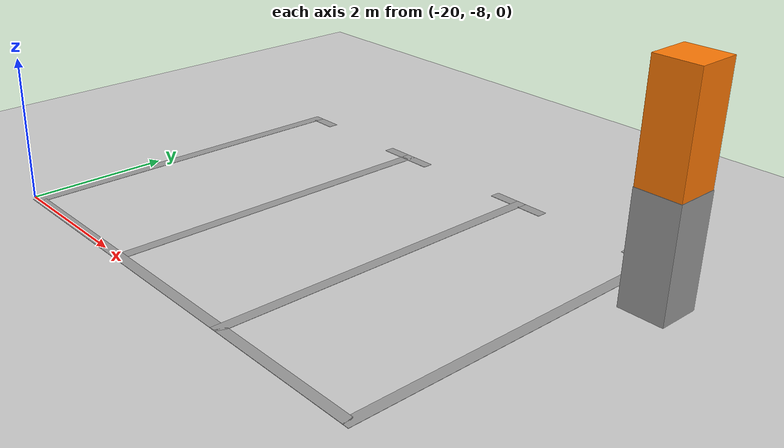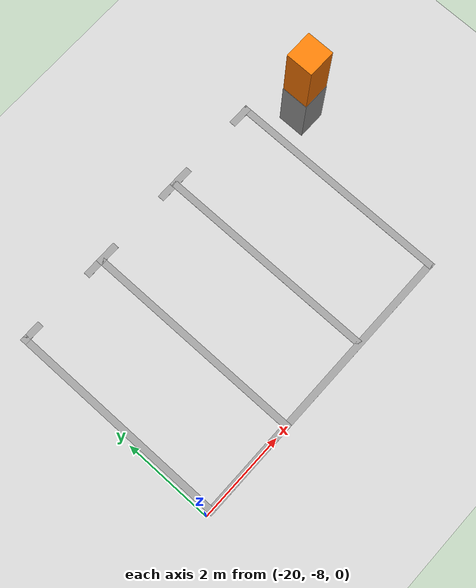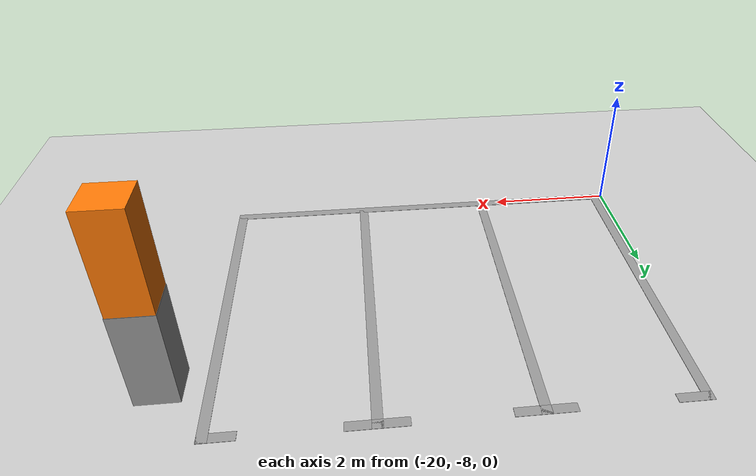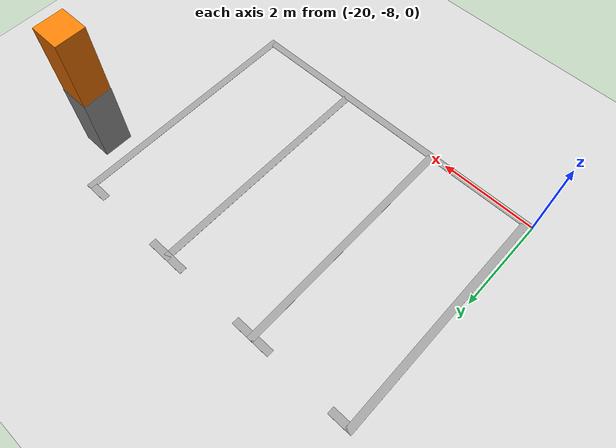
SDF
<sdf version="1.7">
 <world name="default">
  <model name="ground_plane">
   <static>1</static>
   <link name="link">
    <collision name="collision">
     <geometry><plane><normal>0 0 1</normal><size>100 100</size></plane></geometry>
     <surface><friction><ode><mu>100</mu><mu2>50</mu2></ode></friction></surface>
    </collision>
    <visual name="visual">
     <cast_shadows>0</cast_shadows>
     <geometry><plane><normal>0 0 1</normal><size>100 100</size></plane></geometry>
     <material>
      <script><uri>file://media/materials/scripts/gazebo.material</uri><name>Gazebo/Grey</name></script>
     </material>
    </visual>
   </link>
  </model>
  <model name="carport1_4_clone_0">
   <pose>-16.1561 -7.24507 0 0 -0 3.14141</pose>
   <link name="Wall_105">
    <collision name="Wall_105_Collision">
     <geometry><box><size>0.61 0.6 1.5</size></box></geometry>
     <pose>0 0 0.75 0 -0 0</pose>
    </collision>
    <visual name="Wall_105_Visual">
     <pose>0 0 0.75 0 -0 0</pose>
     <geometry><box><size>0.61 0.6 1.5</size></box></geometry>
     <material>
      <script><uri>file://media/materials/scripts/gazebo.material</uri><name>Gazebo/Grey</name></script>
      <ambient>1 1 1 1</ambient>
     </material>
     <meta><layer>0</layer></meta>
    </visual>
    <pose>-3.47407 -3.2865 0 0 -0 0</pose>
   </link>
   <link name="Wall_116">
    <collision name="Wall_116_Collision">
     <geometry><box><size>5.1 0.15 0.005</size></box></geometry>
     <pose>0 0 0.0025 0 -0 0</pose>
    </collision>
    <visual name="Wall_116_Visual">
     <pose>0 0 0.0025 0 -0 0</pose>
     <geometry><box><size>5.1 0.15 0.005</size></box></geometry>
     <material>
      <script><uri>file://media/materials/scripts/gazebo.material</uri><name>Gazebo/Grey</name></script>
      <ambient>1 1 1 1</ambient>
     </material>
     <meta><layer>0</layer></meta>
    </visual>
    <pose>-2.82307 -1.7385 0 0 -0 1.5708</pose>
   </link>
   <link name="Wall_124">
    <collision name="Wall_124_Collision">
     <geometry><box><size>5.1 0.15 0.005</size></box></geometry>
     <pose>0 0 0.0025 0 -0 0</pose>
    </collision>
    <visual name="Wall_124_Visual">
     <pose>0 0 0.0025 0 -0 0</pose>
     <geometry><box><size>5.1 0.15 0.005</size></box></geometry>
     <material>
      <script><uri>file://media/materials/scripts/gazebo.material</uri><name>Gazebo/Grey</name></script>
      <ambient>1 1 1 1</ambient>
     </material>
     <meta><layer>0</layer></meta>
    </visual>
    <pose>3.70393 -1.7305 0 0 -0 1.5708</pose>
   </link>
   <link name="Wall_146">
    <collision name="Wall_146_Collision">
     <geometry><box><size>6.67711 0.15 0.005</size></box></geometry>
     <pose>0 0 0.0025 0 -0 0</pose>
    </collision>
    <visual name="Wall_146_Visual">
     <pose>0 0 0.0025 0 -0 0</pose>
     <geometry><box><size>6.67711 0.15 0.005</size></box></geometry>
     <material>
      <script><uri>file://media/materials/scripts/gazebo.material</uri><name>Gazebo/Grey</name></script>
      <ambient>1 1 1 1</ambient>
     </material>
     <meta><layer>0</layer></meta>
    </visual>
    <pose>0.440428 0.7405 0 0 -0 0.001226</pose>
   </link>
   <link name="Wall_168">
    <collision name="Wall_168_Collision">
     <geometry><box><size>5.1 0.15 0.005</size></box></geometry>
     <pose>0 0 0.0025 0 -0 0</pose>
    </collision>
    <visual name="Wall_168_Visual">
     <pose>0 0 0.0025 0 -0 0</pose>
     <geometry><box><size>5.1 0.15 0.005</size></box></geometry>
     <material>
      <script><uri>file://media/materials/scripts/gazebo.material</uri><name>Gazebo/Grey</name></script>
      <ambient>1 1 1 1</ambient>
     </material>
     <meta><layer>0</layer></meta>
    </visual>
    <pose>-0.64827 -1.73839 0 0 -0 1.57088</pose>
   </link>
   <link name="Wall_173">
    <collision name="Wall_173_Collision">
     <geometry><box><size>5.1 0.15 0.005</size></box></geometry>
     <pose>0 0 0.0025 0 -0 0</pose>
    </collision>
    <visual name="Wall_173_Visual">
     <pose>0 0 0.0025 0 -0 0</pose>
     <geometry><box><size>5.1 0.15 0.005</size></box></geometry>
     <material>
      <script><uri>file://media/materials/scripts/gazebo.material</uri><name>Gazebo/Grey</name></script>
      <ambient>1 1 1 1</ambient>
     </material>
     <meta><layer>0</layer></meta>
    </visual>
    <pose>1.52673 -1.73839 0 0 -0 1.57088</pose>
   </link>
   <link name="Wall_177">
    <collision name="Wall_177_Collision">
     <geometry><box><size>0.6 0.59 3</size></box></geometry>
     <pose>0 0 1.5 0 -0 0</pose>
    </collision>
    <visual name="Wall_177_Visual">
     <pose>0 0 1.5 0 -0 0</pose>
     <geometry><box><size>0.6 0.59 3</size></box></geometry>
     <material>
      <script><uri>file://media/materials/scripts/gazebo.material</uri><name>Gazebo/Grey</name></script>
      <ambient>0.996078 0.47451 0.0196078 1</ambient>
     </material>
     <meta><layer>0</layer></meta>
    </visual>
    <pose>-3.47407 -3.2865 0 0 -0 0</pose>
   </link>
   <link name="Wall_179">
    <collision name="Wall_179_Collision">
     <geometry><box><size>0.5 0.15 0.005</size></box></geometry>
     <pose>0 0 0.0025 0 -0 0</pose>
    </collision>
    <visual name="Wall_179_Visual">
     <pose>0 0 0.0025 0 -0 0</pose>
     <geometry><box><size>0.5 0.15 0.005</size></box></geometry>
     <material>
      <script><uri>file://media/materials/scripts/gazebo.material</uri><name>Gazebo/Grey</name></script>
      <ambient>1 1 1 1</ambient>
     </material>
     <meta><layer>0</layer></meta>
    </visual>
    <pose>-2.64807 -4.2135 0 0 -0 0</pose>
   </link>
   <link name="Wall_181">
    <collision name="Wall_181_Collision">
     <geometry><box><size>0.5 0.15 0.005</size></box></geometry>
     <pose>0 0 0.0025 0 -0 0</pose>
    </collision>
    <visual name="Wall_181_Visual">
     <pose>0 0 0.0025 0 -0 0</pose>
     <geometry><box><size>0.5 0.15 0.005</size></box></geometry>
     <material>
      <script><uri>file://media/materials/scripts/gazebo.material</uri><name>Gazebo/Grey</name></script>
      <ambient>1 1 1 1</ambient>
     </material>
     <meta><layer>0</layer></meta>
    </visual>
    <pose>-0.823072 -4.2135 0 0 -0 3.14159</pose>
   </link>
   <link name="Wall_183">
    <collision name="Wall_183_Collision">
     <geometry><box><size>0.5 0.15 0.005</size></box></geometry>
     <pose>0 0 0.0025 0 -0 0</pose>
    </collision>
    <visual name="Wall_183_Visual">
     <pose>0 0 0.0025 0 -0 0</pose>
     <geometry><box><size>0.5 0.15 0.005</size></box></geometry>
     <material>
      <script><uri>file://media/materials/scripts/gazebo.material</uri><name>Gazebo/Grey</name></script>
      <ambient>1 1 1 1</ambient>
     </material>
     <meta><layer>0</layer></meta>
    </visual>
    <pose>-0.473072 -4.2135 0 0 -0 0</pose>
   </link>
   <link name="Wall_185">
    <collision name="Wall_185_Collision">
     <geometry><box><size>0.5 0.15 0.005</size></box></geometry>
     <pose>0 0 0.0025 0 -0 0</pose>
    </collision>
    <visual name="Wall_185_Visual">
     <pose>0 0 0.0025 0 -0 0</pose>
     <geometry><box><size>0.5 0.15 0.005</size></box></geometry>
     <material>
      <script><uri>file://media/materials/scripts/gazebo.material</uri><name>Gazebo/Grey</name></script>
      <ambient>1 1 1 1</ambient>
     </material>
     <meta><layer>0</layer></meta>
    </visual>
    <pose>1.35193 -4.2135 0 0 -0 3.14159</pose>
   </link>
   <link name="Wall_187">
    <collision name="Wall_187_Collision">
     <geometry><box><size>0.5 0.15 0.005</size></box></geometry>
     <pose>0 0 0.0025 0 -0 0</pose>
    </collision>
    <visual name="Wall_187_Visual">
     <pose>0 0 0.0025 0 -0 0</pose>
     <geometry><box><size>0.5 0.15 0.005</size></box></geometry>
     <material>
      <script><uri>file://media/materials/scripts/gazebo.material</uri><name>Gazebo/Grey</name></script>
      <ambient>1 1 1 1</ambient>
     </material>
     <meta><layer>0</layer></meta>
    </visual>
    <pose>1.70193 -4.2135 0 0 -0 0</pose>
   </link>
   <link name="Wall_189">
    <collision name="Wall_189_Collision">
     <geometry><box><size>0.5 0.15 0.005</size></box></geometry>
     <pose>0 0 0.0025 0 -0 0</pose>
    </collision>
    <visual name="Wall_189_Visual">
     <pose>0 0 0.0025 0 -0 0</pose>
     <geometry><box><size>0.5 0.15 0.005</size></box></geometry>
     <material>
      <script><uri>file://media/materials/scripts/gazebo.material</uri><name>Gazebo/Grey</name></script>
      <ambient>1 1 1 1</ambient>
     </material>
     <meta><layer>0</layer></meta>
    </visual>
    <pose>3.52893 -4.2055 0 0 -0 3.14159</pose>
   </link>
   <static>1</static>
  </model>
 </world>
</sdf>
